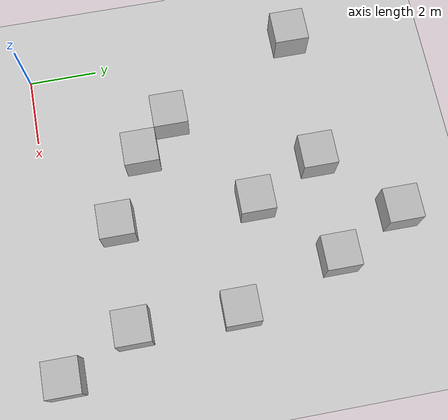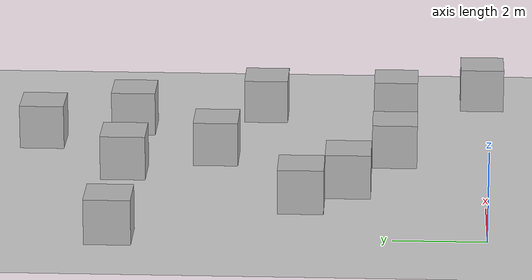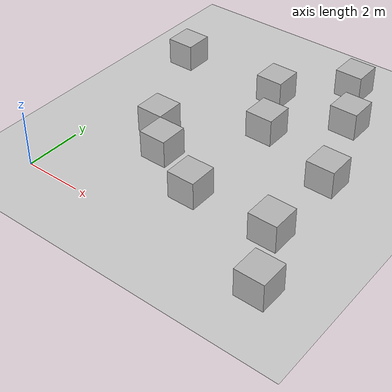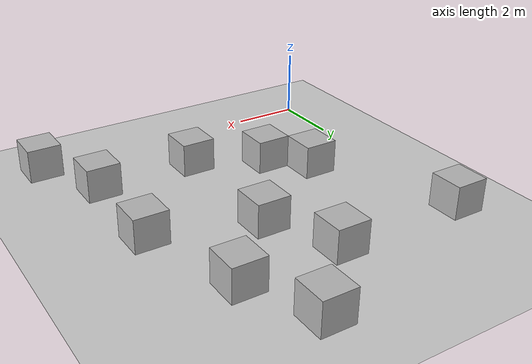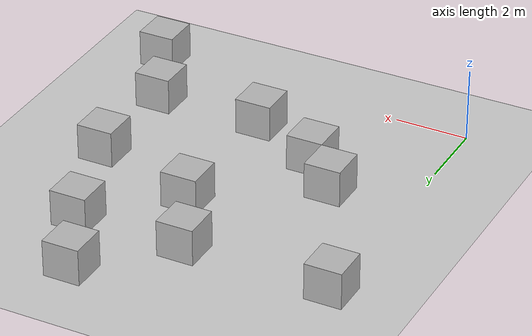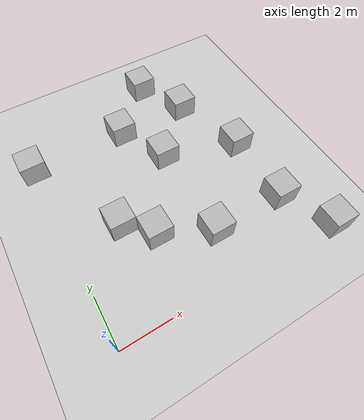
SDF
<sdf version="1.7">
 <world name="default">
  <light name="sun" type="directional">
   <pose>0 0 10 0 -0 0</pose>
   <diffuse>0.8 0.8 0.8 1</diffuse>
   <specular>0.2 0.2 0.2 1</specular>
   <attenuation>
    <range>1000</range>
    <constant>0.9</constant>
    <linear>0.01</linear>
    <quadratic>0.001</quadratic>
   </attenuation>
   <direction>-0.5 0.1 -0.9</direction>
   <spot><inner_angle>0</inner_angle><outer_angle>0</outer_angle><falloff>0</falloff></spot>
  </light>
  <model name="ground_plane">
   <static>1</static>
   <link name="link">
    <collision name="collision">
     <geometry><plane><normal>0 0 1</normal><size>100 100</size></plane></geometry>
     <surface><friction><ode><mu>100</mu><mu2>50</mu2></ode></friction></surface>
    </collision>
    <visual name="visual">
     <cast_shadows>0</cast_shadows>
     <geometry><plane><normal>0 0 1</normal><size>100 100</size></plane></geometry>
     <material>
      <script><uri>file://media/materials/scripts/gazebo.material</uri><name>Gazebo/Grey</name></script>
     </material>
    </visual>
   </link>
  </model>
  <gravity>0 0 -9.8</gravity>
  <magnetic_field>6e-06 2.3e-05 -4.2e-05</magnetic_field>
  <atmosphere type="adiabatic"/>
  <physics type="ode">
   <max_step_size>0.001</max_step_size>
   <real_time_factor>1</real_time_factor>
   <real_time_update_rate>1000</real_time_update_rate>
  </physics>
  <scene><ambient>0.4 0.4 0.4 1</ambient><background>0.7 0.7 0.7 1</background><shadows>1</shadows></scene>
  <audio><device>default</device></audio>
  <spherical_coordinates>
   <surface_model>EARTH_WGS84</surface_model>
   <latitude_deg>0</latitude_deg>
   <longitude_deg>0</longitude_deg>
   <elevation>0</elevation>
   <heading_deg>0</heading_deg>
  </spherical_coordinates>
  <model name="cube_obstacle_0">
   <link name="link">
    <pose>0 0 0.5 0 -0 0</pose>
    <collision name="collision">
     <geometry><mesh><uri>model://cube_obstacle/meshes/cube.stl</uri></mesh></geometry>
    </collision>
    <visual name="visual">
     <geometry><mesh><uri>model://cube_obstacle/meshes/cube.stl</uri></mesh></geometry>
    </visual>
    <inertial>
     <inertia><ixx>1</ixx><ixy>0</ixy><ixz>0</ixz><iyy>1</iyy><iyz>0</iyz><izz>1</izz></inertia>
     <mass>1</mass>
    </inertial>
   </link>
   <pose>2 4 -0.5 -0 -0 -0</pose>
  </model>
  <model name="cube_obstacle_0_clone">
   <link name="link">
    <pose>0 0 0.5 0 -0 0</pose>
    <collision name="collision">
     <geometry><mesh><uri>model://cube_obstacle/meshes/cube.stl</uri></mesh></geometry>
    </collision>
    <visual name="visual">
     <geometry><mesh><uri>model://cube_obstacle/meshes/cube.stl</uri></mesh></geometry>
    </visual>
    <inertial>
     <inertia><ixx>1</ixx><ixy>0</ixy><ixz>0</ixz><iyy>1</iyy><iyz>0</iyz><izz>1</izz></inertia>
     <mass>1</mass>
    </inertial>
   </link>
   <pose>5 6 -0.5 -0 -0 -0</pose>
  </model>
  <model name="cube_obstacle_0_clone_0">
   <link name="link">
    <pose>0 0 0.5 0 -0 0</pose>
    <collision name="collision">
     <geometry><mesh><uri>model://cube_obstacle/meshes/cube.stl</uri></mesh></geometry>
    </collision>
    <visual name="visual">
     <geometry><mesh><uri>model://cube_obstacle/meshes/cube.stl</uri></mesh></geometry>
    </visual>
    <inertial>
     <inertia><ixx>1</ixx><ixy>0</ixy><ixz>0</ixz><iyy>1</iyy><iyz>0</iyz><izz>1</izz></inertia>
     <mass>1</mass>
    </inertial>
   </link>
   <pose>7 8 -0.5 -0 -0 -0</pose>
  </model>
  <model name="cube_obstacle_0_clone_1">
   <link name="link">
    <pose>0 0 0.5 0 -0 0</pose>
    <collision name="collision">
     <geometry><mesh><uri>model://cube_obstacle/meshes/cube.stl</uri></mesh></geometry>
    </collision>
    <visual name="visual">
     <geometry><mesh><uri>model://cube_obstacle/meshes/cube.stl</uri></mesh></geometry>
    </visual>
    <inertial>
     <inertia><ixx>1</ixx><ixy>0</ixy><ixz>0</ixz><iyy>1</iyy><iyz>0</iyz><izz>1</izz></inertia>
     <mass>1</mass>
    </inertial>
   </link>
   <pose>8 5 -0.5 -0 -0 -0</pose>
  </model>
  <model name="cube_obstacle_0_clone_2">
   <link name="link">
    <pose>0 0 0.5 0 -0 0</pose>
    <collision name="collision">
     <geometry><mesh><uri>model://cube_obstacle/meshes/cube.stl</uri></mesh></geometry>
    </collision>
    <visual name="visual">
     <geometry><mesh><uri>model://cube_obstacle/meshes/cube.stl</uri></mesh></geometry>
    </visual>
    <inertial>
     <inertia><ixx>1</ixx><ixy>0</ixy><ixz>0</ixz><iyy>1</iyy><iyz>0</iyz><izz>1</izz></inertia>
     <mass>1</mass>
    </inertial>
   </link>
   <pose>5 2 -0.5 -0 -0 -0</pose>
  </model>
  <model name="cube_obstacle_0_clone_3">
   <link name="link">
    <pose>0 0 0.5 0 -0 0</pose>
    <collision name="collision">
     <geometry><mesh><uri>model://cube_obstacle/meshes/cube.stl</uri></mesh></geometry>
    </collision>
    <visual name="visual">
     <geometry><mesh><uri>model://cube_obstacle/meshes/cube.stl</uri></mesh></geometry>
    </visual>
    <inertial>
     <inertia><ixx>1</ixx><ixy>0</ixy><ixz>0</ixz><iyy>1</iyy><iyz>0</iyz><izz>1</izz></inertia>
     <mass>1</mass>
    </inertial>
   </link>
   <pose>3 3 -0.5 -0 -0 -0</pose>
  </model>
  <model name="cube_obstacle_0_clone_4">
   <link name="link">
    <pose>0 0 0.5 0 -0 0</pose>
    <collision name="collision">
     <geometry><mesh><uri>model://cube_obstacle/meshes/cube.stl</uri></mesh></geometry>
    </collision>
    <visual name="visual">
     <geometry><mesh><uri>model://cube_obstacle/meshes/cube.stl</uri></mesh></geometry>
    </visual>
    <inertial>
     <inertia><ixx>1</ixx><ixy>0</ixy><ixz>0</ixz><iyy>1</iyy><iyz>0</iyz><izz>1</izz></inertia>
     <mass>1</mass>
    </inertial>
   </link>
   <pose>8 2 -0.5 -0 -0 -0</pose>
  </model>
  <model name="cube_obstacle_0_clone_5">
   <link name="link">
    <pose>0 0 0.5 0 -0 0</pose>
    <collision name="collision">
     <geometry><mesh><uri>model://cube_obstacle/meshes/cube.stl</uri></mesh></geometry>
    </collision>
    <visual name="visual">
     <geometry><mesh><uri>model://cube_obstacle/meshes/cube.stl</uri></mesh></geometry>
    </visual>
    <inertial>
     <inertia><ixx>1</ixx><ixy>0</ixy><ixz>0</ixz><iyy>1</iyy><iyz>0</iyz><izz>1</izz></inertia>
     <mass>1</mass>
    </inertial>
   </link>
   <pose>9 0 -0.5 -0 -0 -0</pose>
  </model>
  <model name="cube_obstacle_0_clone_6">
   <link name="link">
    <pose>0 0 0.5 0 -0 0</pose>
    <collision name="collision">
     <geometry><mesh><uri>model://cube_obstacle/meshes/cube.stl</uri></mesh></geometry>
    </collision>
    <visual name="visual">
     <geometry><mesh><uri>model://cube_obstacle/meshes/cube.stl</uri></mesh></geometry>
    </visual>
    <inertial>
     <inertia><ixx>1</ixx><ixy>0</ixy><ixz>0</ixz><iyy>1</iyy><iyz>0</iyz><izz>1</izz></inertia>
     <mass>1</mass>
    </inertial>
   </link>
   <pose>0 8 -0.5 -0 -0 -0</pose>
  </model>
  <model name="cube_obstacle_0_clone_7">
   <link name="link">
    <pose>0 0 0.5 0 -0 0</pose>
    <collision name="collision">
     <geometry><mesh><uri>model://cube_obstacle/meshes/cube.stl</uri></mesh></geometry>
    </collision>
    <visual name="visual">
     <geometry><mesh><uri>model://cube_obstacle/meshes/cube.stl</uri></mesh></geometry>
    </visual>
    <inertial>
     <inertia><ixx>1</ixx><ixy>0</ixy><ixz>0</ixz><iyy>1</iyy><iyz>0</iyz><izz>1</izz></inertia>
     <mass>1</mass>
    </inertial>
   </link>
   <pose>4 8 -0.5 -0 -0 -0</pose>
  </model>
  <model name="cube_obstacle_0_clone_8">
   <link name="link">
    <pose>0 0 0.5 0 -0 0</pose>
    <collision name="collision">
     <geometry><mesh><uri>model://cube_obstacle/meshes/cube.stl</uri></mesh></geometry>
    </collision>
    <visual name="visual">
     <geometry><mesh><uri>model://cube_obstacle/meshes/cube.stl</uri></mesh></geometry>
    </visual>
    <inertial>
     <inertia><ixx>1</ixx><ixy>0</ixy><ixz>0</ixz><iyy>1</iyy><iyz>0</iyz><izz>1</izz></inertia>
     <mass>1</mass>
    </inertial>
   </link>
   <pose>6 10 -0.500002 3e-06 1e-06 -0</pose>
  </model>
 </world>
</sdf>
